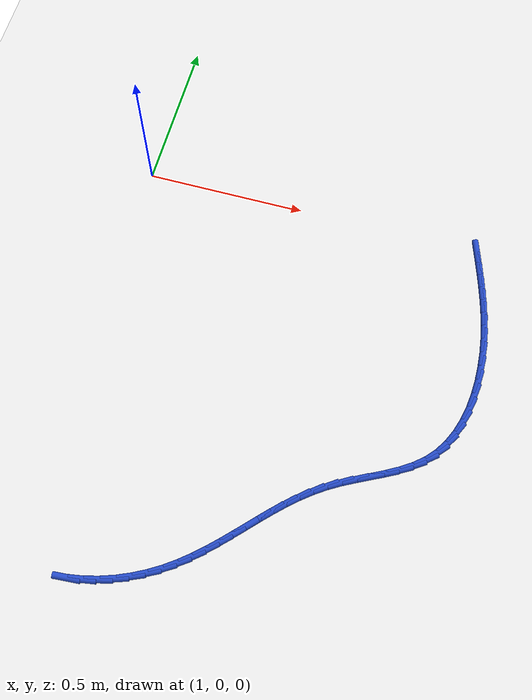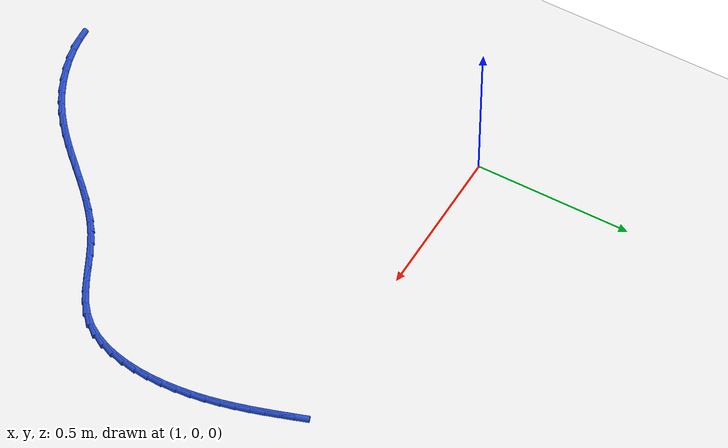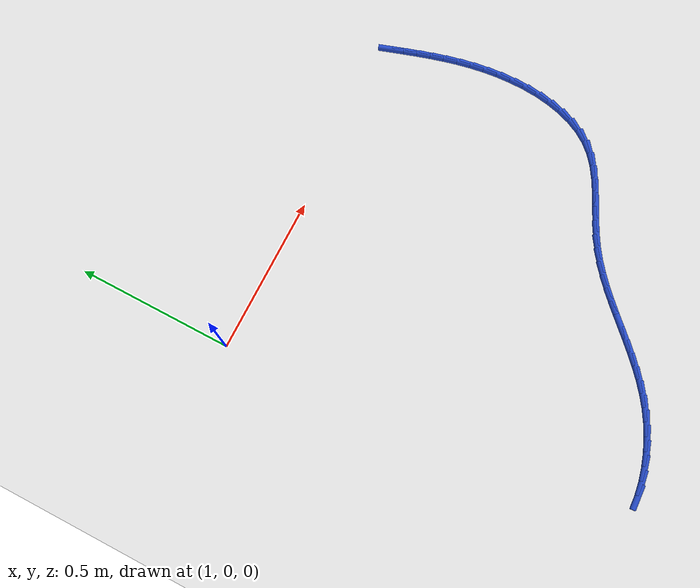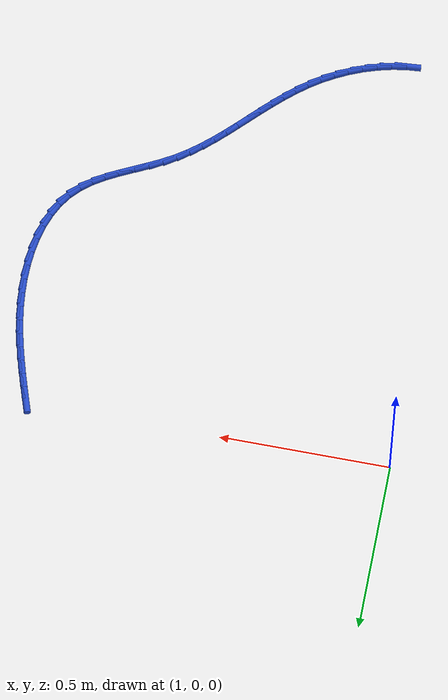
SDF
<sdf version="1.6">
 <world name="default">
  <model name="ground_plane">
   <static>1</static>
   <link name="link">
    <collision name="collision">
     <geometry><plane><normal>0 0 1</normal><size>100 100</size></plane></geometry>
     <surface><friction><ode><mu>100</mu><mu2>50</mu2></ode></friction></surface>
    </collision>
    <visual name="visual">
     <cast_shadows>0</cast_shadows>
     <geometry><plane><normal>0 0 1</normal><size>100 100</size></plane></geometry>
     <material>
      <script><uri>file://media/materials/scripts/gazebo.material</uri><name>Gazebo/WhiteGlow</name></script>
     </material>
    </visual>
   </link>
  </model>
  <model name="line">
   <link name="link_84">
    <pose>2.072213517817848 -0.002897011986152276 0.01 0 1.57 -1.2439532931999941</pose>
    <collision name="collision">
     <geometry><cylinder><radius>0.01</radius><length>0.08</length></cylinder></geometry>
    </collision>
    <visual name="visual">
     <material>
      <script><name>Gazebo/Blue</name><uri>file://media/materials/scripts/gazebo.material</uri></script>
     </material>
     <geometry><cylinder><radius>0.01</radius><length>0.08</length></cylinder></geometry>
    </visual>
   </link>
   <link name="link_85">
    <pose>2.0858566078140934 -0.043141959237148336 0.01 0 1.57 -1.2529476327894236</pose>
    <collision name="collision">
     <geometry><cylinder><radius>0.01</radius><length>0.08</length></cylinder></geometry>
    </collision>
    <visual name="visual">
     <material>
      <script><name>Gazebo/Blue</name><uri>file://media/materials/scripts/gazebo.material</uri></script>
     </material>
     <geometry><cylinder><radius>0.01</radius><length>0.08</length></cylinder></geometry>
    </visual>
   </link>
   <link name="link_86">
    <pose>2.0992039739755186 -0.08371102444092522 0.01 0 1.57 -1.269286984580393</pose>
    <collision name="collision">
     <geometry><cylinder><radius>0.01</radius><length>0.08</length></cylinder></geometry>
    </collision>
    <visual name="visual">
     <material>
      <script><name>Gazebo/Blue</name><uri>file://media/materials/scripts/gazebo.material</uri></script>
     </material>
     <geometry><cylinder><radius>0.01</radius><length>0.08</length></cylinder></geometry>
    </visual>
   </link>
   <link name="link_87">
    <pose>2.111957032751855 -0.12471885833063788 0.01 0 1.57 -1.292818714553665</pose>
    <collision name="collision">
     <geometry><cylinder><radius>0.01</radius><length>0.08</length></cylinder></geometry>
    </collision>
    <visual name="visual">
     <material>
      <script><name>Gazebo/Blue</name><uri>file://media/materials/scripts/gazebo.material</uri></script>
     </material>
     <geometry><cylinder><radius>0.01</radius><length>0.08</length></cylinder></geometry>
    </visual>
   </link>
   <link name="link_88">
    <pose>2.1238172005928324 -0.1662801116394412 0.01 0 1.57 -1.3233372415941755</pose>
    <collision name="collision">
     <geometry><cylinder><radius>0.01</radius><length>0.08</length></cylinder></geometry>
    </collision>
    <visual name="visual">
     <material>
      <script><name>Gazebo/Blue</name><uri>file://media/materials/scripts/gazebo.material</uri></script>
     </material>
     <geometry><cylinder><radius>0.01</radius><length>0.08</length></cylinder></geometry>
    </visual>
   </link>
   <link name="link_89">
    <pose>2.134485893948182 -0.20850943510049091 0.01 0 1.57 -1.3605529770411071</pose>
    <collision name="collision">
     <geometry><cylinder><radius>0.01</radius><length>0.08</length></cylinder></geometry>
    </collision>
    <visual name="visual">
     <material>
      <script><name>Gazebo/Blue</name><uri>file://media/materials/scripts/gazebo.material</uri></script>
     </material>
     <geometry><cylinder><radius>0.01</radius><length>0.08</length></cylinder></geometry>
    </visual>
   </link>
   <link name="link_90">
    <pose>2.1436645292676344 -0.2515214794469403 0.01 0 1.57 -1.4040580180255517</pose>
    <collision name="collision">
     <geometry><cylinder><radius>0.01</radius><length>0.08</length></cylinder></geometry>
    </collision>
    <visual name="visual">
     <material>
      <script><name>Gazebo/Blue</name><uri>file://media/materials/scripts/gazebo.material</uri></script>
     </material>
     <geometry><cylinder><radius>0.01</radius><length>0.08</length></cylinder></geometry>
    </visual>
   </link>
   <link name="link_91">
    <pose>2.151054523000921 -0.2954308954119452 0.01 0 1.57 -1.4532743984523844</pose>
    <collision name="collision">
     <geometry><cylinder><radius>0.01</radius><length>0.08</length></cylinder></geometry>
    </collision>
    <visual name="visual">
     <material>
      <script><name>Gazebo/Blue</name><uri>file://media/materials/scripts/gazebo.material</uri></script>
     </material>
     <geometry><cylinder><radius>0.01</radius><length>0.08</length></cylinder></geometry>
    </visual>
   </link>
   <link name="link_92">
    <pose>2.1563572888002183 -0.34034447440184445 0.01 0 1.57 -1.507085768933281</pose>
    <collision name="collision">
     <geometry><cylinder><radius>0.01</radius><length>0.08</length></cylinder></geometry>
    </collision>
    <visual name="visual">
     <material>
      <script><name>Gazebo/Blue</name><uri>file://media/materials/scripts/gazebo.material</uri></script>
     </material>
     <geometry><cylinder><radius>0.01</radius><length>0.08</length></cylinder></geometry>
    </visual>
   </link>
   <link name="link_93">
    <pose>2.1592741321922593 -0.38606524499530476 0.01 0 1.57 -1.565744138825443</pose>
    <collision name="collision">
     <geometry><cylinder><radius>0.01</radius><length>0.08</length></cylinder></geometry>
    </collision>
    <visual name="visual">
     <material>
      <script><name>Gazebo/Blue</name><uri>file://media/materials/scripts/gazebo.material</uri></script>
     </material>
     <geometry><cylinder><radius>0.01</radius><length>0.08</length></cylinder></geometry>
    </visual>
   </link>
   <link name="link_94">
    <pose>2.159506218608101 -0.43200265718257164 0.01 0 1.57 1.5104463929351775</pose>
    <collision name="collision">
     <geometry><cylinder><radius>0.01</radius><length>0.08</length></cylinder></geometry>
    </collision>
    <visual name="visual">
     <material>
      <script><name>Gazebo/Blue</name><uri>file://media/materials/scripts/gazebo.material</uri></script>
     </material>
     <geometry><cylinder><radius>0.01</radius><length>0.08</length></cylinder></geometry>
    </visual>
   </link>
   <link name="link_95">
    <pose>2.156754704152405 -0.47753995979397645 0.01 0 1.57 1.4360848337660843</pose>
    <collision name="collision">
     <geometry><cylinder><radius>0.01</radius><length>0.08</length></cylinder></geometry>
    </collision>
    <visual name="visual">
     <material>
      <script><name>Gazebo/Blue</name><uri>file://media/materials/scripts/gazebo.material</uri></script>
     </material>
     <geometry><cylinder><radius>0.01</radius><length>0.08</length></cylinder></geometry>
    </visual>
   </link>
   <link name="link_96">
    <pose>2.150720744929834 -0.5220604016598536 0.01 0 1.57 1.3502430087324517</pose>
    <collision name="collision">
     <geometry><cylinder><radius>0.01</radius><length>0.08</length></cylinder></geometry>
    </collision>
    <visual name="visual">
     <material>
      <script><name>Gazebo/Blue</name><uri>file://media/materials/scripts/gazebo.material</uri></script>
     </material>
     <geometry><cylinder><radius>0.01</radius><length>0.08</length></cylinder></geometry>
    </visual>
   </link>
   <link name="link_97">
    <pose>2.1411054970450505 -0.5649472316105363 0.01 0 1.57 1.250155965671363</pose>
    <collision name="collision">
     <geometry><cylinder><radius>0.01</radius><length>0.08</length></cylinder></geometry>
    </collision>
    <visual name="visual">
     <material>
      <script><name>Gazebo/Blue</name><uri>file://media/materials/scripts/gazebo.material</uri></script>
     </material>
     <geometry><cylinder><radius>0.01</radius><length>0.08</length></cylinder></geometry>
    </visual>
   </link>
   <link name="link_98">
    <pose>2.1276101166027157 -0.605583698476358 0.01 0 1.57 1.1331117624604046</pose>
    <collision name="collision">
     <geometry><cylinder><radius>0.01</radius><length>0.08</length></cylinder></geometry>
    </collision>
    <visual name="visual">
     <material>
      <script><name>Gazebo/Blue</name><uri>file://media/materials/scripts/gazebo.material</uri></script>
     </material>
     <geometry><cylinder><radius>0.01</radius><length>0.08</length></cylinder></geometry>
    </visual>
   </link>
   <link name="link_99">
    <pose>2.1099357597074917 -0.6433530510876524 0.01 0 1.57 0.9971609795064702</pose>
    <collision name="collision">
     <geometry><cylinder><radius>0.01</radius><length>0.08</length></cylinder></geometry>
    </collision>
    <visual name="visual">
     <material>
      <script><name>Gazebo/Blue</name><uri>file://media/materials/scripts/gazebo.material</uri></script>
     </material>
     <geometry><cylinder><radius>0.01</radius><length>0.08</length></cylinder></geometry>
    </visual>
   </link>
   <link name="link_100">
    <pose>2.0877835824640414 -0.6776385382747521 0.01 0 1.57 0.8429486941387975</pose>
    <collision name="collision">
     <geometry><cylinder><radius>0.01</radius><length>0.08</length></cylinder></geometry>
    </collision>
    <visual name="visual">
     <material>
      <script><name>Gazebo/Blue</name><uri>file://media/materials/scripts/gazebo.material</uri></script>
     </material>
     <geometry><cylinder><radius>0.01</radius><length>0.08</length></cylinder></geometry>
    </visual>
   </link>
   <link name="link_101">
    <pose>2.0608704975768943 -0.7078423656274907 0.01 0 1.57 0.6953973182636752</pose>
    <collision name="collision">
     <geometry><cylinder><radius>0.01</radius><length>0.08</length></cylinder></geometry>
    </collision>
    <visual name="visual">
     <material>
      <script><name>Gazebo/Blue</name><uri>file://media/materials/scripts/gazebo.material</uri></script>
     </material>
     <geometry><cylinder><radius>0.01</radius><length>0.08</length></cylinder></geometry>
    </visual>
   </link>
   <link name="link_102">
    <pose>2.0294740091452375 -0.7340411860362106 0.01 0 1.57 0.5848917512590555</pose>
    <collision name="collision">
     <geometry><cylinder><radius>0.01</radius><length>0.08</length></cylinder></geometry>
    </collision>
    <visual name="visual">
     <material>
      <script><name>Gazebo/Blue</name><uri>file://media/materials/scripts/gazebo.material</uri></script>
     </material>
     <geometry><cylinder><radius>0.01</radius><length>0.08</length></cylinder></geometry>
    </visual>
   </link>
   <link name="link_103">
    <pose>1.9945711464418734 -0.7571532508700785 0.01 0 1.57 0.5116898305407757</pose>
    <collision name="collision">
     <geometry><cylinder><radius>0.01</radius><length>0.08</length></cylinder></geometry>
    </collision>
    <visual name="visual">
     <material>
      <script><name>Gazebo/Blue</name><uri>file://media/materials/scripts/gazebo.material</uri></script>
     </material>
     <geometry><cylinder><radius>0.01</radius><length>0.08</length></cylinder></geometry>
    </visual>
   </link>
   <link name="link_104">
    <pose>1.9571829098016427 -0.7781497130668078 0.01 0 1.57 0.47237472344343645</pose>
    <collision name="collision">
     <geometry><cylinder><radius>0.01</radius><length>0.08</length></cylinder></geometry>
    </collision>
    <visual name="visual">
     <material>
      <script><name>Gazebo/Blue</name><uri>file://media/materials/scripts/gazebo.material</uri></script>
     </material>
     <geometry><cylinder><radius>0.01</radius><length>0.08</length></cylinder></geometry>
    </visual>
   </link>
   <link name="link_105">
    <pose>1.918330299559386 -0.7980017255641101 0.01 0 1.57 0.464272901834862</pose>
    <collision name="collision">
     <geometry><cylinder><radius>0.01</radius><length>0.08</length></cylinder></geometry>
    </collision>
    <visual name="visual">
     <material>
      <script><name>Gazebo/Blue</name><uri>file://media/materials/scripts/gazebo.material</uri></script>
     </material>
     <geometry><cylinder><radius>0.01</radius><length>0.08</length></cylinder></geometry>
    </visual>
   </link>
   <link name="link_106">
    <pose>1.8790343160499425 -0.8176804412996982 0.01 0 1.57 0.48646779568548165</pose>
    <collision name="collision">
     <geometry><cylinder><radius>0.01</radius><length>0.08</length></cylinder></geometry>
    </collision>
    <visual name="visual">
     <material>
      <script><name>Gazebo/Blue</name><uri>file://media/materials/scripts/gazebo.material</uri></script>
     </material>
     <geometry><cylinder><radius>0.01</radius><length>0.08</length></cylinder></geometry>
    </visual>
   </link>
   <link name="link_107">
    <pose>1.8403159596081518 -0.8381570132112846 0.01 0 1.57 0.539831092236394</pose>
    <collision name="collision">
     <geometry><cylinder><radius>0.01</radius><length>0.08</length></cylinder></geometry>
    </collision>
    <visual name="visual">
     <material>
      <script><name>Gazebo/Blue</name><uri>file://media/materials/scripts/gazebo.material</uri></script>
     </material>
     <geometry><cylinder><radius>0.01</radius><length>0.08</length></cylinder></geometry>
    </visual>
   </link>
   <link name="link_108">
    <pose>1.8031940362994856 -0.8604004714174277 0.01 0 1.57 0.6134529640103775</pose>
    <collision name="collision">
     <geometry><cylinder><radius>0.01</radius><length>0.08</length></cylinder></geometry>
    </collision>
    <visual name="visual">
     <material>
      <script><name>Gazebo/Blue</name><uri>file://media/materials/scripts/gazebo.material</uri></script>
     </material>
     <geometry><cylinder><radius>0.01</radius><length>0.08</length></cylinder></geometry>
    </visual>
   </link>
   <link name="link_109">
    <pose>1.7682780102500542 -0.8849838331669153 0.01 0 1.57 0.6792995895885092</pose>
    <collision name="collision">
     <geometry><cylinder><radius>0.01</radius><length>0.08</length></cylinder></geometry>
    </collision>
    <visual name="visual">
     <material>
      <script><name>Gazebo/Blue</name><uri>file://media/materials/scripts/gazebo.material</uri></script>
     </material>
     <geometry><cylinder><radius>0.01</radius><length>0.08</length></cylinder></geometry>
    </visual>
   </link>
   <link name="link_110">
    <pose>1.7352900597875451 -0.9116217218779714 0.01 0 1.57 0.7325736276947749</pose>
    <collision name="collision">
     <geometry><cylinder><radius>0.01</radius><length>0.08</length></cylinder></geometry>
    </collision>
    <visual name="visual">
     <material>
      <script><name>Gazebo/Blue</name><uri>file://media/materials/scripts/gazebo.material</uri></script>
     </material>
     <geometry><cylinder><radius>0.01</radius><length>0.08</length></cylinder></geometry>
    </visual>
   </link>
   <link name="link_111">
    <pose>1.7038362379946708 -0.9399164170160139 0.01 0 1.57 0.7727064823963369</pose>
    <collision name="collision">
     <geometry><cylinder><radius>0.01</radius><length>0.08</length></cylinder></geometry>
    </collision>
    <visual name="visual">
     <material>
      <script><name>Gazebo/Blue</name><uri>file://media/materials/scripts/gazebo.material</uri></script>
     </material>
     <geometry><cylinder><radius>0.01</radius><length>0.08</length></cylinder></geometry>
    </visual>
   </link>
   <link name="link_112">
    <pose>1.6735225979541417 -0.9694701980464621 0.01 0 1.57 0.7995303522243365</pose>
    <collision name="collision">
     <geometry><cylinder><radius>0.01</radius><length>0.08</length></cylinder></geometry>
    </collision>
    <visual name="visual">
     <material>
      <script><name>Gazebo/Blue</name><uri>file://media/materials/scripts/gazebo.material</uri></script>
     </material>
     <geometry><cylinder><radius>0.01</radius><length>0.08</length></cylinder></geometry>
    </visual>
   </link>
   <link name="link_113">
    <pose>1.6439551927486682 -0.9998853444347346 0.01 0 1.57 0.813075662296589</pose>
    <collision name="collision">
     <geometry><cylinder><radius>0.01</radius><length>0.08</length></cylinder></geometry>
    </collision>
    <visual name="visual">
     <material>
      <script><name>Gazebo/Blue</name><uri>file://media/materials/scripts/gazebo.material</uri></script>
     </material>
     <geometry><cylinder><radius>0.01</radius><length>0.08</length></cylinder></geometry>
    </visual>
   </link>
   <link name="link_114">
    <pose>1.6147400754609604 -1.0307641356462502 0.01 0 1.57 0.8134289821251407</pose>
    <collision name="collision">
     <geometry><cylinder><radius>0.01</radius><length>0.08</length></cylinder></geometry>
    </collision>
    <visual name="visual">
     <material>
      <script><name>Gazebo/Blue</name><uri>file://media/materials/scripts/gazebo.material</uri></script>
     </material>
     <geometry><cylinder><radius>0.01</radius><length>0.08</length></cylinder></geometry>
    </visual>
   </link>
   <link name="link_115">
    <pose>1.5854832991737289 -1.0617088511464283 0.01 0 1.57 0.8006615903322354</pose>
    <collision name="collision">
     <geometry><cylinder><radius>0.01</radius><length>0.08</length></cylinder></geometry>
    </collision>
    <visual name="visual">
     <material>
      <script><name>Gazebo/Blue</name><uri>file://media/materials/scripts/gazebo.material</uri></script>
     </material>
     <geometry><cylinder><radius>0.01</radius><length>0.08</length></cylinder></geometry>
    </visual>
   </link>
   <link name="link_116">
    <pose>1.5557909169696849 -1.0923217704006862 0.01 0 1.57 0.7748277600407167</pose>
    <collision name="collision">
     <geometry><cylinder><radius>0.01</radius><length>0.08</length></cylinder></geometry>
    </collision>
    <visual name="visual">
     <material>
      <script><name>Gazebo/Blue</name><uri>file://media/materials/scripts/gazebo.material</uri></script>
     </material>
     <geometry><cylinder><radius>0.01</radius><length>0.08</length></cylinder></geometry>
    </visual>
   </link>
   <link name="link_117">
    <pose>1.525268981931539 -1.122205172874444 0.01 0 1.57 0.736030200231219</pose>
    <collision name="collision">
     <geometry><cylinder><radius>0.01</radius><length>0.08</length></cylinder></geometry>
    </collision>
    <visual name="visual">
     <material>
      <script><name>Gazebo/Blue</name><uri>file://media/materials/scripts/gazebo.material</uri></script>
     </material>
     <geometry><cylinder><radius>0.01</radius><length>0.08</length></cylinder></geometry>
    </visual>
   </link>
   <link name="link_118">
    <pose>1.4935235471420019 -1.1509613380331194 0.01 0 1.57 0.6845488463346086</pose>
    <collision name="collision">
     <geometry><cylinder><radius>0.01</radius><length>0.08</length></cylinder></geometry>
    </collision>
    <visual name="visual">
     <material>
      <script><name>Gazebo/Blue</name><uri>file://media/materials/scripts/gazebo.material</uri></script>
     </material>
     <geometry><cylinder><radius>0.01</radius><length>0.08</length></cylinder></geometry>
    </visual>
   </link>
   <link name="link_119">
    <pose>1.4601606656837838 -1.178192545342132 0.01 0 1.57 0.6210200793519534</pose>
    <collision name="collision">
     <geometry><cylinder><radius>0.01</radius><length>0.08</length></cylinder></geometry>
    </collision>
    <visual name="visual">
     <material>
      <script><name>Gazebo/Blue</name><uri>file://media/materials/scripts/gazebo.material</uri></script>
     </material>
     <geometry><cylinder><radius>0.01</radius><length>0.08</length></cylinder></geometry>
    </visual>
   </link>
   <link name="link_120">
    <pose>1.424786390639596 -1.2035010742669003 0.01 0 1.57 0.5484880361997785</pose>
    <collision name="collision">
     <geometry><cylinder><radius>0.01</radius><length>0.08</length></cylinder></geometry>
    </collision>
    <visual name="visual">
     <material>
      <script><name>Gazebo/Blue</name><uri>file://media/materials/scripts/gazebo.material</uri></script>
     </material>
     <geometry><cylinder><radius>0.01</radius><length>0.08</length></cylinder></geometry>
    </visual>
   </link>
   <link name="link_121">
    <pose>1.3871330032339995 -1.2265083042263327 0.01 0 1.57 0.4752655015146954</pose>
    <collision name="collision">
     <geometry><cylinder><radius>0.01</radius><length>0.08</length></cylinder></geometry>
    </collision>
    <visual name="visual">
     <material>
      <script><name>Gazebo/Blue</name><uri>file://media/materials/scripts/gazebo.material</uri></script>
     </material>
     <geometry><cylinder><radius>0.01</radius><length>0.08</length></cylinder></geometry>
    </visual>
   </link>
   <link name="link_122">
    <pose>1.3474734477512975 -1.2469174239660288 0.01 0 1.57 0.40198718064336897</pose>
    <collision name="collision">
     <geometry><cylinder><radius>0.01</radius><length>0.08</length></cylinder></geometry>
    </collision>
    <visual name="visual">
     <material>
      <script><name>Gazebo/Blue</name><uri>file://media/materials/scripts/gazebo.material</uri></script>
     </material>
     <geometry><cylinder><radius>0.01</radius><length>0.08</length></cylinder></geometry>
    </visual>
   </link>
   <link name="link_123">
    <pose>1.3062253957399121 -1.2644535213419854 0.01 0 1.57 0.3270144759297473</pose>
    <collision name="collision">
     <geometry><cylinder><radius>0.01</radius><length>0.08</length></cylinder></geometry>
    </collision>
    <visual name="visual">
     <material>
      <script><name>Gazebo/Blue</name><uri>file://media/materials/scripts/gazebo.material</uri></script>
     </material>
     <geometry><cylinder><radius>0.01</radius><length>0.08</length></cylinder></geometry>
    </visual>
   </link>
   <link name="link_124">
    <pose>1.263806520350853 -1.2788416844526889 0.01 0 1.57 0.24873159583230836</pose>
    <collision name="collision">
     <geometry><cylinder><radius>0.01</radius><length>0.08</length></cylinder></geometry>
    </collision>
    <visual name="visual">
     <material>
      <script><name>Gazebo/Blue</name><uri>file://media/materials/scripts/gazebo.material</uri></script>
     </material>
     <geometry><cylinder><radius>0.01</radius><length>0.08</length></cylinder></geometry>
    </visual>
   </link>
   <link name="link_125">
    <pose>1.220634494735133 -1.2898070013966287 0.01 0 1.57 0.16551336609260336</pose>
    <collision name="collision">
     <geometry><cylinder><radius>0.01</radius><length>0.08</length></cylinder></geometry>
    </collision>
    <visual name="visual">
     <material>
      <script><name>Gazebo/Blue</name><uri>file://media/materials/scripts/gazebo.material</uri></script>
     </material>
     <geometry><cylinder><radius>0.01</radius><length>0.08</length></cylinder></geometry>
    </visual>
   </link>
   <link name="link_126">
    <pose>1.1771269920437617 -1.297074560272292 0.01 0 1.57 0.07572975364302065</pose>
    <collision name="collision">
     <geometry><cylinder><radius>0.01</radius><length>0.08</length></cylinder></geometry>
    </collision>
    <visual name="visual">
     <material>
      <script><name>Gazebo/Blue</name><uri>file://media/materials/scripts/gazebo.material</uri></script>
     </material>
     <geometry><cylinder><radius>0.01</radius><length>0.08</length></cylinder></geometry>
    </visual>
   </link>
  </model>
 </world>
</sdf>
